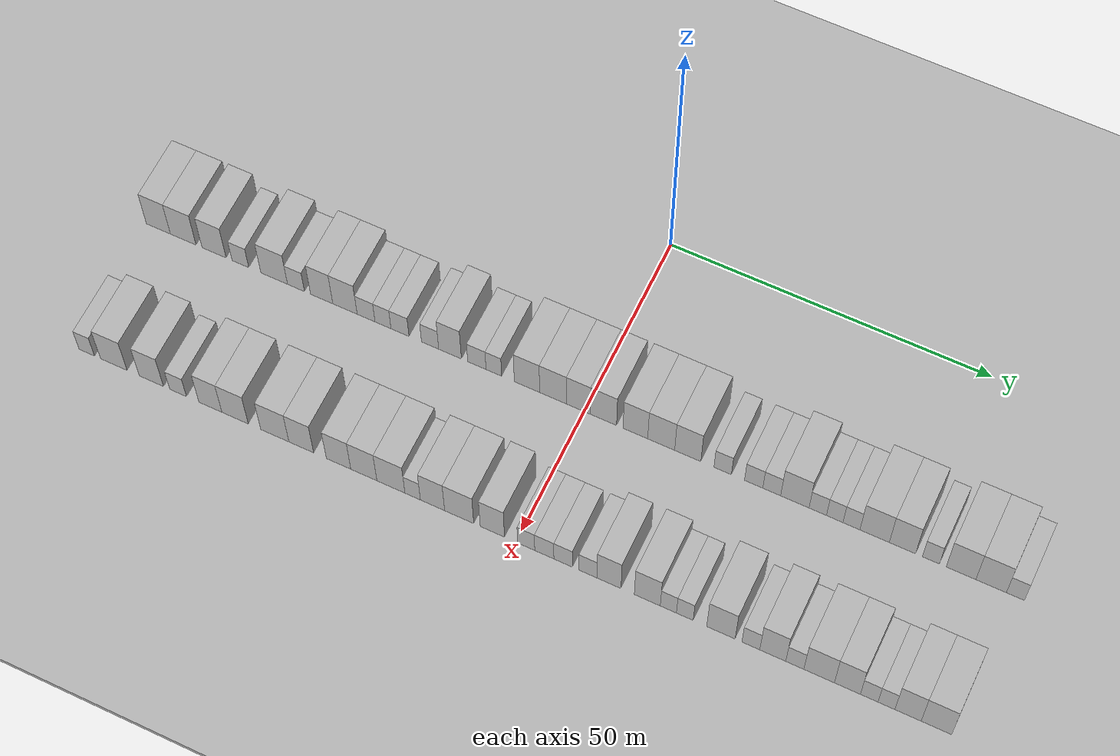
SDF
<sdf version="1.6">
 <world name="default">
  <include><name>ground_plane_1</name><uri>model://HANNAS_ground_plane</uri></include>
  <include>
   <name>ground_plane_2</name>
   <uri>model://HANNAS_ground_plane</uri>
   <pose>100 0 0  0 0 0</pose>
  </include>
  <model name="building_33">
   <static>1</static>
   <pose>25.0000 -68.5717 0 0.000000 0.000000 0.000000</pose>
   <link name="link">
    <pose>0 0 4.50 0 0 0</pose>
    <collision name="collision"><geometry><box><size>10.0000 4.0033 9.0000</size></box></geometry></collision>
    <visual name="visual">
     <cast_shadows>0</cast_shadows>
     <geometry><box><size>10.0000 4.0033 9.0000</size></box></geometry>
     <material>
      <script>
       <uri>model://HANNAS_wall/materials/scripts</uri>
       <uri>model://HANNAS_wall/materials/textures</uri>
       <name>vrc/HANNAS_wall</name>
      </script>
     </material>
    </visual>
   </link>
  </model>
  <model name="building_34">
   <static>1</static>
   <pose>25.0000 -64.4402 0 0.000000 0.000000 0.000000</pose>
   <link name="link">
    <pose>0 0 4.50 0 0 0</pose>
    <collision name="collision"><geometry><box><size>10.0000 4.2598 9.0000</size></box></geometry></collision>
    <visual name="visual">
     <cast_shadows>0</cast_shadows>
     <geometry><box><size>10.0000 4.2598 9.0000</size></box></geometry>
     <material>
      <script>
       <uri>model://HANNAS_wall/materials/scripts</uri>
       <uri>model://HANNAS_wall/materials/textures</uri>
       <name>vrc/HANNAS_wall</name>
      </script>
     </material>
    </visual>
   </link>
  </model>
  <model name="building_35">
   <static>1</static>
   <pose>25.0000 -59.3258 0 0.000000 0.000000 0.000000</pose>
   <link name="link">
    <pose>0 0 4.50 0 0 0</pose>
    <collision name="collision"><geometry><box><size>10.0000 3.9689 9.0000</size></box></geometry></collision>
    <visual name="visual">
     <cast_shadows>0</cast_shadows>
     <geometry><box><size>10.0000 3.9689 9.0000</size></box></geometry>
     <material>
      <script>
       <uri>model://HANNAS_wall/materials/scripts</uri>
       <uri>model://HANNAS_wall/materials/textures</uri>
       <name>vrc/HANNAS_wall</name>
      </script>
     </material>
    </visual>
   </link>
  </model>
  <model name="building_36">
   <static>1</static>
   <pose>25.0000 -54.9732 0 0.000000 0.000000 0.000000</pose>
   <link name="link">
    <pose>0 0 3.00 0 0 0</pose>
    <collision name="collision"><geometry><box><size>10.0000 2.7362 6.0000</size></box></geometry></collision>
    <visual name="visual">
     <cast_shadows>0</cast_shadows>
     <geometry><box><size>10.0000 2.7362 6.0000</size></box></geometry>
     <material>
      <script>
       <uri>model://HANNAS_wall/materials/scripts</uri>
       <uri>model://HANNAS_wall/materials/textures</uri>
       <name>vrc/HANNAS_wall</name>
      </script>
     </material>
    </visual>
   </link>
  </model>
  <model name="building_37">
   <static>1</static>
   <pose>25.0000 -49.4260 0 0.000000 0.000000 0.000000</pose>
   <link name="link">
    <pose>0 0 4.50 0 0 0</pose>
    <collision name="collision"><geometry><box><size>10.0000 4.3583 9.0000</size></box></geometry></collision>
    <visual name="visual">
     <cast_shadows>0</cast_shadows>
     <geometry><box><size>10.0000 4.3583 9.0000</size></box></geometry>
     <material>
      <script>
       <uri>model://HANNAS_wall/materials/scripts</uri>
       <uri>model://HANNAS_wall/materials/textures</uri>
       <name>vrc/HANNAS_wall</name>
      </script>
     </material>
    </visual>
   </link>
  </model>
  <model name="building_38">
   <static>1</static>
   <pose>25.0000 -45.8665 0 0.000000 0.000000 0.000000</pose>
   <link name="link">
    <pose>0 0 3.00 0 0 0</pose>
    <collision name="collision"><geometry><box><size>10.0000 2.7607 6.0000</size></box></geometry></collision>
    <visual name="visual">
     <cast_shadows>0</cast_shadows>
     <geometry><box><size>10.0000 2.7607 6.0000</size></box></geometry>
     <material>
      <script>
       <uri>model://HANNAS_wall/materials/scripts</uri>
       <uri>model://HANNAS_wall/materials/textures</uri>
       <name>vrc/HANNAS_wall</name>
      </script>
     </material>
    </visual>
   </link>
  </model>
  <model name="building_39">
   <static>1</static>
   <pose>25.0000 -41.6844 0 0.000000 0.000000 0.000000</pose>
   <link name="link">
    <pose>0 0 4.50 0 0 0</pose>
    <collision name="collision"><geometry><box><size>10.0000 3.6036 9.0000</size></box></geometry></collision>
    <visual name="visual">
     <cast_shadows>0</cast_shadows>
     <geometry><box><size>10.0000 3.6036 9.0000</size></box></geometry>
     <material>
      <script>
       <uri>model://HANNAS_wall/materials/scripts</uri>
       <uri>model://HANNAS_wall/materials/textures</uri>
       <name>vrc/HANNAS_wall</name>
      </script>
     </material>
    </visual>
   </link>
  </model>
  <model name="building_40">
   <static>1</static>
   <pose>25.0000 -37.9024 0 0.000000 0.000000 0.000000</pose>
   <link name="link">
    <pose>0 0 4.50 0 0 0</pose>
    <collision name="collision"><geometry><box><size>10.0000 3.9604 9.0000</size></box></geometry></collision>
    <visual name="visual">
     <cast_shadows>0</cast_shadows>
     <geometry><box><size>10.0000 3.9604 9.0000</size></box></geometry>
     <material>
      <script>
       <uri>model://HANNAS_wall/materials/scripts</uri>
       <uri>model://HANNAS_wall/materials/textures</uri>
       <name>vrc/HANNAS_wall</name>
      </script>
     </material>
    </visual>
   </link>
  </model>
  <model name="building_41">
   <static>1</static>
   <pose>25.0000 -34.4834 0 0.000000 0.000000 0.000000</pose>
   <link name="link">
    <pose>0 0 3.00 0 0 0</pose>
    <collision name="collision"><geometry><box><size>10.0000 2.8776 6.0000</size></box></geometry></collision>
    <visual name="visual">
     <cast_shadows>0</cast_shadows>
     <geometry><box><size>10.0000 2.8776 6.0000</size></box></geometry>
     <material>
      <script>
       <uri>model://HANNAS_wall/materials/scripts</uri>
       <uri>model://HANNAS_wall/materials/textures</uri>
       <name>vrc/HANNAS_wall</name>
      </script>
     </material>
    </visual>
   </link>
  </model>
  <model name="building_42">
   <static>1</static>
   <pose>25.0000 -31.7618 0 0.000000 0.000000 0.000000</pose>
   <link name="link">
    <pose>0 0 3.00 0 0 0</pose>
    <collision name="collision"><geometry><box><size>10.0000 2.5654 6.0000</size></box></geometry></collision>
    <visual name="visual">
     <cast_shadows>0</cast_shadows>
     <geometry><box><size>10.0000 2.5654 6.0000</size></box></geometry>
     <material>
      <script>
       <uri>model://HANNAS_wall/materials/scripts</uri>
       <uri>model://HANNAS_wall/materials/textures</uri>
       <name>vrc/HANNAS_wall</name>
      </script>
     </material>
    </visual>
   </link>
  </model>
  <model name="building_43">
   <static>1</static>
   <pose>25.0000 -29.0326 0 0.000000 0.000000 0.000000</pose>
   <link name="link">
    <pose>0 0 3.00 0 0 0</pose>
    <collision name="collision"><geometry><box><size>10.0000 2.8930 6.0000</size></box></geometry></collision>
    <visual name="visual">
     <cast_shadows>0</cast_shadows>
     <geometry><box><size>10.0000 2.8930 6.0000</size></box></geometry>
     <material>
      <script>
       <uri>model://HANNAS_wall/materials/scripts</uri>
       <uri>model://HANNAS_wall/materials/textures</uri>
       <name>vrc/HANNAS_wall</name>
      </script>
     </material>
    </visual>
   </link>
  </model>
  <model name="building_44">
   <static>1</static>
   <pose>25.0000 -24.2162 0 0.000000 0.000000 0.000000</pose>
   <link name="link">
    <pose>0 0 3.00 0 0 0</pose>
    <collision name="collision"><geometry><box><size>10.0000 2.7399 6.0000</size></box></geometry></collision>
    <visual name="visual">
     <cast_shadows>0</cast_shadows>
     <geometry><box><size>10.0000 2.7399 6.0000</size></box></geometry>
     <material>
      <script>
       <uri>model://HANNAS_wall/materials/scripts</uri>
       <uri>model://HANNAS_wall/materials/textures</uri>
       <name>vrc/HANNAS_wall</name>
      </script>
     </material>
    </visual>
   </link>
  </model>
  <model name="building_45">
   <static>1</static>
   <pose>25.0000 -21.0369 0 0.000000 0.000000 0.000000</pose>
   <link name="link">
    <pose>0 0 4.50 0 0 0</pose>
    <collision name="collision"><geometry><box><size>10.0000 3.6186 9.0000</size></box></geometry></collision>
    <visual name="visual">
     <cast_shadows>0</cast_shadows>
     <geometry><box><size>10.0000 3.6186 9.0000</size></box></geometry>
     <material>
      <script>
       <uri>model://HANNAS_wall/materials/scripts</uri>
       <uri>model://HANNAS_wall/materials/textures</uri>
       <name>vrc/HANNAS_wall</name>
      </script>
     </material>
    </visual>
   </link>
  </model>
  <model name="building_46">
   <static>1</static>
   <pose>25.0000 -16.7770 0 0.000000 0.000000 0.000000</pose>
   <link name="link">
    <pose>0 0 3.00 0 0 0</pose>
    <collision name="collision"><geometry><box><size>10.0000 2.9012 6.0000</size></box></geometry></collision>
    <visual name="visual">
     <cast_shadows>0</cast_shadows>
     <geometry><box><size>10.0000 2.9012 6.0000</size></box></geometry>
     <material>
      <script>
       <uri>model://HANNAS_wall/materials/scripts</uri>
       <uri>model://HANNAS_wall/materials/textures</uri>
       <name>vrc/HANNAS_wall</name>
      </script>
     </material>
    </visual>
   </link>
  </model>
  <model name="building_47">
   <static>1</static>
   <pose>25.0000 -14.0936 0 0.000000 0.000000 0.000000</pose>
   <link name="link">
    <pose>0 0 3.00 0 0 0</pose>
    <collision name="collision"><geometry><box><size>10.0000 2.4657 6.0000</size></box></geometry></collision>
    <visual name="visual">
     <cast_shadows>0</cast_shadows>
     <geometry><box><size>10.0000 2.4657 6.0000</size></box></geometry>
     <material>
      <script>
       <uri>model://HANNAS_wall/materials/scripts</uri>
       <uri>model://HANNAS_wall/materials/textures</uri>
       <name>vrc/HANNAS_wall</name>
      </script>
     </material>
    </visual>
   </link>
  </model>
  <model name="building_48">
   <static>1</static>
   <pose>25.0000 -8.8720 0 0.000000 0.000000 0.000000</pose>
   <link name="link">
    <pose>0 0 4.50 0 0 0</pose>
    <collision name="collision"><geometry><box><size>10.0000 3.9774 9.0000</size></box></geometry></collision>
    <visual name="visual">
     <cast_shadows>0</cast_shadows>
     <geometry><box><size>10.0000 3.9774 9.0000</size></box></geometry>
     <material>
      <script>
       <uri>model://HANNAS_wall/materials/scripts</uri>
       <uri>model://HANNAS_wall/materials/textures</uri>
       <name>vrc/HANNAS_wall</name>
      </script>
     </material>
    </visual>
   </link>
  </model>
  <model name="building_49">
   <static>1</static>
   <pose>25.0000 -4.7981 0 0.000000 0.000000 0.000000</pose>
   <link name="link">
    <pose>0 0 4.50 0 0 0</pose>
    <collision name="collision"><geometry><box><size>10.0000 4.1706 9.0000</size></box></geometry></collision>
    <visual name="visual">
     <cast_shadows>0</cast_shadows>
     <geometry><box><size>10.0000 4.1706 9.0000</size></box></geometry>
     <material>
      <script>
       <uri>model://HANNAS_wall/materials/scripts</uri>
       <uri>model://HANNAS_wall/materials/textures</uri>
       <name>vrc/HANNAS_wall</name>
      </script>
     </material>
    </visual>
   </link>
  </model>
  <model name="building_50">
   <static>1</static>
   <pose>25.0000 -0.8397 0 0.000000 0.000000 0.000000</pose>
   <link name="link">
    <pose>0 0 4.50 0 0 0</pose>
    <collision name="collision"><geometry><box><size>10.0000 3.7461 9.0000</size></box></geometry></collision>
    <visual name="visual">
     <cast_shadows>0</cast_shadows>
     <geometry><box><size>10.0000 3.7461 9.0000</size></box></geometry>
     <material>
      <script>
       <uri>model://HANNAS_wall/materials/scripts</uri>
       <uri>model://HANNAS_wall/materials/textures</uri>
       <name>vrc/HANNAS_wall</name>
      </script>
     </material>
    </visual>
   </link>
  </model>
  <model name="building_51">
   <static>1</static>
   <pose>25.0000 3.0756 0 0.000000 0.000000 0.000000</pose>
   <link name="link">
    <pose>0 0 4.50 0 0 0</pose>
    <collision name="collision"><geometry><box><size>10.0000 4.0845 9.0000</size></box></geometry></collision>
    <visual name="visual">
     <cast_shadows>0</cast_shadows>
     <geometry><box><size>10.0000 4.0845 9.0000</size></box></geometry>
     <material>
      <script>
       <uri>model://HANNAS_wall/materials/scripts</uri>
       <uri>model://HANNAS_wall/materials/textures</uri>
       <name>vrc/HANNAS_wall</name>
      </script>
     </material>
    </visual>
   </link>
  </model>
  <model name="building_52">
   <static>1</static>
   <pose>25.0000 8.0231 0 0.000000 0.000000 0.000000</pose>
   <link name="link">
    <pose>0 0 4.50 0 0 0</pose>
    <collision name="collision"><geometry><box><size>10.0000 3.8103 9.0000</size></box></geometry></collision>
    <visual name="visual">
     <cast_shadows>0</cast_shadows>
     <geometry><box><size>10.0000 3.8103 9.0000</size></box></geometry>
     <material>
      <script>
       <uri>model://HANNAS_wall/materials/scripts</uri>
       <uri>model://HANNAS_wall/materials/textures</uri>
       <name>vrc/HANNAS_wall</name>
      </script>
     </material>
    </visual>
   </link>
  </model>
  <model name="building_53">
   <static>1</static>
   <pose>25.0000 12.0070 0 0.000000 0.000000 0.000000</pose>
   <link name="link">
    <pose>0 0 4.50 0 0 0</pose>
    <collision name="collision"><geometry><box><size>10.0000 4.1575 9.0000</size></box></geometry></collision>
    <visual name="visual">
     <cast_shadows>0</cast_shadows>
     <geometry><box><size>10.0000 4.1575 9.0000</size></box></geometry>
     <material>
      <script>
       <uri>model://HANNAS_wall/materials/scripts</uri>
       <uri>model://HANNAS_wall/materials/textures</uri>
       <name>vrc/HANNAS_wall</name>
      </script>
     </material>
    </visual>
   </link>
  </model>
  <model name="building_54">
   <static>1</static>
   <pose>25.0000 16.0909 0 0.000000 0.000000 0.000000</pose>
   <link name="link">
    <pose>0 0 4.50 0 0 0</pose>
    <collision name="collision"><geometry><box><size>10.0000 4.0104 9.0000</size></box></geometry></collision>
    <visual name="visual">
     <cast_shadows>0</cast_shadows>
     <geometry><box><size>10.0000 4.0104 9.0000</size></box></geometry>
     <material>
      <script>
       <uri>model://HANNAS_wall/materials/scripts</uri>
       <uri>model://HANNAS_wall/materials/textures</uri>
       <name>vrc/HANNAS_wall</name>
      </script>
     </material>
    </visual>
   </link>
  </model>
  <model name="building_55">
   <static>1</static>
   <pose>25.0000 21.4236 0 0.000000 0.000000 0.000000</pose>
   <link name="link">
    <pose>0 0 3.00 0 0 0</pose>
    <collision name="collision"><geometry><box><size>10.0000 2.6548 6.0000</size></box></geometry></collision>
    <visual name="visual">
     <cast_shadows>0</cast_shadows>
     <geometry><box><size>10.0000 2.6548 6.0000</size></box></geometry>
     <material>
      <script>
       <uri>model://HANNAS_wall/materials/scripts</uri>
       <uri>model://HANNAS_wall/materials/textures</uri>
       <name>vrc/HANNAS_wall</name>
      </script>
     </material>
    </visual>
   </link>
  </model>
  <model name="building_56">
   <static>1</static>
   <pose>25.0000 26.1383 0 0.000000 0.000000 0.000000</pose>
   <link name="link">
    <pose>0 0 3.00 0 0 0</pose>
    <collision name="collision"><geometry><box><size>10.0000 2.7746 6.0000</size></box></geometry></collision>
    <visual name="visual">
     <cast_shadows>0</cast_shadows>
     <geometry><box><size>10.0000 2.7746 6.0000</size></box></geometry>
     <material>
      <script>
       <uri>model://HANNAS_wall/materials/scripts</uri>
       <uri>model://HANNAS_wall/materials/textures</uri>
       <name>vrc/HANNAS_wall</name>
      </script>
     </material>
    </visual>
   </link>
  </model>
  <model name="building_57">
   <static>1</static>
   <pose>25.0000 28.8759 0 0.000000 0.000000 0.000000</pose>
   <link name="link">
    <pose>0 0 3.00 0 0 0</pose>
    <collision name="collision"><geometry><box><size>10.0000 2.7008 6.0000</size></box></geometry></collision>
    <visual name="visual">
     <cast_shadows>0</cast_shadows>
     <geometry><box><size>10.0000 2.7008 6.0000</size></box></geometry>
     <material>
      <script>
       <uri>model://HANNAS_wall/materials/scripts</uri>
       <uri>model://HANNAS_wall/materials/textures</uri>
       <name>vrc/HANNAS_wall</name>
      </script>
     </material>
    </visual>
   </link>
  </model>
  <model name="building_58">
   <static>1</static>
   <pose>25.0000 32.3667 0 0.000000 0.000000 0.000000</pose>
   <link name="link">
    <pose>0 0 4.50 0 0 0</pose>
    <collision name="collision"><geometry><box><size>10.0000 4.2808 9.0000</size></box></geometry></collision>
    <visual name="visual">
     <cast_shadows>0</cast_shadows>
     <geometry><box><size>10.0000 4.2808 9.0000</size></box></geometry>
     <material>
      <script>
       <uri>model://HANNAS_wall/materials/scripts</uri>
       <uri>model://HANNAS_wall/materials/textures</uri>
       <name>vrc/HANNAS_wall</name>
      </script>
     </material>
    </visual>
   </link>
  </model>
  <model name="building_59">
   <static>1</static>
   <pose>25.0000 35.8172 0 0.000000 0.000000 0.000000</pose>
   <link name="link">
    <pose>0 0 3.00 0 0 0</pose>
    <collision name="collision"><geometry><box><size>10.0000 2.6202 6.0000</size></box></geometry></collision>
    <visual name="visual">
     <cast_shadows>0</cast_shadows>
     <geometry><box><size>10.0000 2.6202 6.0000</size></box></geometry>
     <material>
      <script>
       <uri>model://HANNAS_wall/materials/scripts</uri>
       <uri>model://HANNAS_wall/materials/textures</uri>
       <name>vrc/HANNAS_wall</name>
      </script>
     </material>
    </visual>
   </link>
  </model>
  <model name="building_60">
   <static>1</static>
   <pose>25.0000 38.3645 0 0.000000 0.000000 0.000000</pose>
   <link name="link">
    <pose>0 0 3.00 0 0 0</pose>
    <collision name="collision"><geometry><box><size>10.0000 2.4744 6.0000</size></box></geometry></collision>
    <visual name="visual">
     <cast_shadows>0</cast_shadows>
     <geometry><box><size>10.0000 2.4744 6.0000</size></box></geometry>
     <material>
      <script>
       <uri>model://HANNAS_wall/materials/scripts</uri>
       <uri>model://HANNAS_wall/materials/textures</uri>
       <name>vrc/HANNAS_wall</name>
      </script>
     </material>
    </visual>
   </link>
  </model>
  <model name="building_61">
   <static>1</static>
   <pose>25.0000 40.8677 0 0.000000 0.000000 0.000000</pose>
   <link name="link">
    <pose>0 0 3.00 0 0 0</pose>
    <collision name="collision"><geometry><box><size>10.0000 2.5318 6.0000</size></box></geometry></collision>
    <visual name="visual">
     <cast_shadows>0</cast_shadows>
     <geometry><box><size>10.0000 2.5318 6.0000</size></box></geometry>
     <material>
      <script>
       <uri>model://HANNAS_wall/materials/scripts</uri>
       <uri>model://HANNAS_wall/materials/textures</uri>
       <name>vrc/HANNAS_wall</name>
      </script>
     </material>
    </visual>
   </link>
  </model>
  <model name="building_62">
   <static>1</static>
   <pose>25.0000 44.3219 0 0.000000 0.000000 0.000000</pose>
   <link name="link">
    <pose>0 0 4.50 0 0 0</pose>
    <collision name="collision"><geometry><box><size>10.0000 4.3766 9.0000</size></box></geometry></collision>
    <visual name="visual">
     <cast_shadows>0</cast_shadows>
     <geometry><box><size>10.0000 4.3766 9.0000</size></box></geometry>
     <material>
      <script>
       <uri>model://HANNAS_wall/materials/scripts</uri>
       <uri>model://HANNAS_wall/materials/textures</uri>
       <name>vrc/HANNAS_wall</name>
      </script>
     </material>
    </visual>
   </link>
  </model>
  <model name="building_63">
   <static>1</static>
   <pose>25.0000 48.4581 0 0.000000 0.000000 0.000000</pose>
   <link name="link">
    <pose>0 0 4.50 0 0 0</pose>
    <collision name="collision"><geometry><box><size>10.0000 3.8957 9.0000</size></box></geometry></collision>
    <visual name="visual">
     <cast_shadows>0</cast_shadows>
     <geometry><box><size>10.0000 3.8957 9.0000</size></box></geometry>
     <material>
      <script>
       <uri>model://HANNAS_wall/materials/scripts</uri>
       <uri>model://HANNAS_wall/materials/textures</uri>
       <name>vrc/HANNAS_wall</name>
      </script>
     </material>
    </visual>
   </link>
  </model>
  <model name="building_64">
   <static>1</static>
   <pose>25.0000 52.6645 0 0.000000 0.000000 0.000000</pose>
   <link name="link">
    <pose>0 0 3.00 0 0 0</pose>
    <collision name="collision"><geometry><box><size>10.0000 2.5172 6.0000</size></box></geometry></collision>
    <visual name="visual">
     <cast_shadows>0</cast_shadows>
     <geometry><box><size>10.0000 2.5172 6.0000</size></box></geometry>
     <material>
      <script>
       <uri>model://HANNAS_wall/materials/scripts</uri>
       <uri>model://HANNAS_wall/materials/textures</uri>
       <name>vrc/HANNAS_wall</name>
      </script>
     </material>
    </visual>
   </link>
  </model>
  <model name="building_65">
   <static>1</static>
   <pose>25.0000 57.1027 0 0.000000 0.000000 0.000000</pose>
   <link name="link">
    <pose>0 0 4.50 0 0 0</pose>
    <collision name="collision"><geometry><box><size>10.0000 4.3592 9.0000</size></box></geometry></collision>
    <visual name="visual">
     <cast_shadows>0</cast_shadows>
     <geometry><box><size>10.0000 4.3592 9.0000</size></box></geometry>
     <material>
      <script>
       <uri>model://HANNAS_wall/materials/scripts</uri>
       <uri>model://HANNAS_wall/materials/textures</uri>
       <name>vrc/HANNAS_wall</name>
      </script>
     </material>
    </visual>
   </link>
  </model>
  <model name="building_66">
   <static>1</static>
   <pose>25.0000 61.5125 0 0.000000 0.000000 0.000000</pose>
   <link name="link">
    <pose>0 0 4.50 0 0 0</pose>
    <collision name="collision"><geometry><box><size>10.0000 4.4603 9.0000</size></box></geometry></collision>
    <visual name="visual">
     <cast_shadows>0</cast_shadows>
     <geometry><box><size>10.0000 4.4603 9.0000</size></box></geometry>
     <material>
      <script>
       <uri>model://HANNAS_wall/materials/scripts</uri>
       <uri>model://HANNAS_wall/materials/textures</uri>
       <name>vrc/HANNAS_wall</name>
      </script>
     </material>
    </visual>
   </link>
  </model>
  <model name="building_67">
   <static>1</static>
   <pose>25.0000 65.0585 0 0.000000 0.000000 0.000000</pose>
   <link name="link">
    <pose>0 0 3.00 0 0 0</pose>
    <collision name="collision"><geometry><box><size>10.0000 2.6317 6.0000</size></box></geometry></collision>
    <visual name="visual">
     <cast_shadows>0</cast_shadows>
     <geometry><box><size>10.0000 2.6317 6.0000</size></box></geometry>
     <material>
      <script>
       <uri>model://HANNAS_wall/materials/scripts</uri>
       <uri>model://HANNAS_wall/materials/textures</uri>
       <name>vrc/HANNAS_wall</name>
      </script>
     </material>
    </visual>
   </link>
  </model>
  <model name="building_142">
   <static>1</static>
   <pose>47.0000 -67.8842 0 0.000000 0.000000 0.000000</pose>
   <link name="link">
    <pose>0 0 3.00 0 0 0</pose>
    <collision name="collision"><geometry><box><size>10.0000 2.5177 6.0000</size></box></geometry></collision>
    <visual name="visual">
     <cast_shadows>0</cast_shadows>
     <geometry><box><size>10.0000 2.5177 6.0000</size></box></geometry>
     <material>
      <script>
       <uri>model://HANNAS_wall/materials/scripts</uri>
       <uri>model://HANNAS_wall/materials/textures</uri>
       <name>vrc/HANNAS_wall</name>
      </script>
     </material>
    </visual>
   </link>
  </model>
  <model name="building_143">
   <static>1</static>
   <pose>47.0000 -63.4637 0 0.000000 0.000000 0.000000</pose>
   <link name="link">
    <pose>0 0 4.50 0 0 0</pose>
    <collision name="collision"><geometry><box><size>10.0000 4.3233 9.0000</size></box></geometry></collision>
    <visual name="visual">
     <cast_shadows>0</cast_shadows>
     <geometry><box><size>10.0000 4.3233 9.0000</size></box></geometry>
     <material>
      <script>
       <uri>model://HANNAS_wall/materials/scripts</uri>
       <uri>model://HANNAS_wall/materials/textures</uri>
       <name>vrc/HANNAS_wall</name>
      </script>
     </material>
    </visual>
   </link>
  </model>
  <model name="building_144">
   <static>1</static>
   <pose>47.0000 -57.3422 0 0.000000 0.000000 0.000000</pose>
   <link name="link">
    <pose>0 0 4.50 0 0 0</pose>
    <collision name="collision"><geometry><box><size>10.0000 3.9196 9.0000</size></box></geometry></collision>
    <visual name="visual">
     <cast_shadows>0</cast_shadows>
     <geometry><box><size>10.0000 3.9196 9.0000</size></box></geometry>
     <material>
      <script>
       <uri>model://HANNAS_wall/materials/scripts</uri>
       <uri>model://HANNAS_wall/materials/textures</uri>
       <name>vrc/HANNAS_wall</name>
      </script>
     </material>
    </visual>
   </link>
  </model>
  <model name="building_145">
   <static>1</static>
   <pose>47.0000 -53.0267 0 0.000000 0.000000 0.000000</pose>
   <link name="link">
    <pose>0 0 3.00 0 0 0</pose>
    <collision name="collision"><geometry><box><size>10.0000 2.7114 6.0000</size></box></geometry></collision>
    <visual name="visual">
     <cast_shadows>0</cast_shadows>
     <geometry><box><size>10.0000 2.7114 6.0000</size></box></geometry>
     <material>
      <script>
       <uri>model://HANNAS_wall/materials/scripts</uri>
       <uri>model://HANNAS_wall/materials/textures</uri>
       <name>vrc/HANNAS_wall</name>
      </script>
     </material>
    </visual>
   </link>
  </model>
  <model name="building_146">
   <static>1</static>
   <pose>47.0000 -47.8244 0 0.000000 0.000000 0.000000</pose>
   <link name="link">
    <pose>0 0 4.50 0 0 0</pose>
    <collision name="collision"><geometry><box><size>10.0000 3.6933 9.0000</size></box></geometry></collision>
    <visual name="visual">
     <cast_shadows>0</cast_shadows>
     <geometry><box><size>10.0000 3.6933 9.0000</size></box></geometry>
     <material>
      <script>
       <uri>model://HANNAS_wall/materials/scripts</uri>
       <uri>model://HANNAS_wall/materials/textures</uri>
       <name>vrc/HANNAS_wall</name>
      </script>
     </material>
    </visual>
   </link>
  </model>
  <model name="building_147">
   <static>1</static>
   <pose>47.0000 -43.8699 0 0.000000 0.000000 0.000000</pose>
   <link name="link">
    <pose>0 0 4.50 0 0 0</pose>
    <collision name="collision"><geometry><box><size>10.0000 4.2156 9.0000</size></box></geometry></collision>
    <visual name="visual">
     <cast_shadows>0</cast_shadows>
     <geometry><box><size>10.0000 4.2156 9.0000</size></box></geometry>
     <material>
      <script>
       <uri>model://HANNAS_wall/materials/scripts</uri>
       <uri>model://HANNAS_wall/materials/textures</uri>
       <name>vrc/HANNAS_wall</name>
      </script>
     </material>
    </visual>
   </link>
  </model>
  <model name="building_148">
   <static>1</static>
   <pose>47.0000 -37.5255 0 0.000000 0.000000 0.000000</pose>
   <link name="link">
    <pose>0 0 4.50 0 0 0</pose>
    <collision name="collision"><geometry><box><size>10.0000 4.4732 9.0000</size></box></geometry></collision>
    <visual name="visual">
     <cast_shadows>0</cast_shadows>
     <geometry><box><size>10.0000 4.4732 9.0000</size></box></geometry>
     <material>
      <script>
       <uri>model://HANNAS_wall/materials/scripts</uri>
       <uri>model://HANNAS_wall/materials/textures</uri>
       <name>vrc/HANNAS_wall</name>
      </script>
     </material>
    </visual>
   </link>
  </model>
  <model name="building_149">
   <static>1</static>
   <pose>47.0000 -33.3310 0 0.000000 0.000000 0.000000</pose>
   <link name="link">
    <pose>0 0 4.50 0 0 0</pose>
    <collision name="collision"><geometry><box><size>10.0000 3.9159 9.0000</size></box></geometry></collision>
    <visual name="visual">
     <cast_shadows>0</cast_shadows>
     <geometry><box><size>10.0000 3.9159 9.0000</size></box></geometry>
     <material>
      <script>
       <uri>model://HANNAS_wall/materials/scripts</uri>
       <uri>model://HANNAS_wall/materials/textures</uri>
       <name>vrc/HANNAS_wall</name>
      </script>
     </material>
    </visual>
   </link>
  </model>
  <model name="building_150">
   <static>1</static>
   <pose>47.0000 -27.4478 0 0.000000 0.000000 0.000000</pose>
   <link name="link">
    <pose>0 0 4.50 0 0 0</pose>
    <collision name="collision"><geometry><box><size>10.0000 3.8503 9.0000</size></box></geometry></collision>
    <visual name="visual">
     <cast_shadows>0</cast_shadows>
     <geometry><box><size>10.0000 3.8503 9.0000</size></box></geometry>
     <material>
      <script>
       <uri>model://HANNAS_wall/materials/scripts</uri>
       <uri>model://HANNAS_wall/materials/textures</uri>
       <name>vrc/HANNAS_wall</name>
      </script>
     </material>
    </visual>
   </link>
  </model>
  <model name="building_151">
   <static>1</static>
   <pose>47.0000 -23.4774 0 0.000000 0.000000 0.000000</pose>
   <link name="link">
    <pose>0 0 4.50 0 0 0</pose>
    <collision name="collision"><geometry><box><size>10.0000 4.0907 9.0000</size></box></geometry></collision>
    <visual name="visual">
     <cast_shadows>0</cast_shadows>
     <geometry><box><size>10.0000 4.0907 9.0000</size></box></geometry>
     <material>
      <script>
       <uri>model://HANNAS_wall/materials/scripts</uri>
       <uri>model://HANNAS_wall/materials/textures</uri>
       <name>vrc/HANNAS_wall</name>
      </script>
     </material>
    </visual>
   </link>
  </model>
  <model name="building_152">
   <static>1</static>
   <pose>47.0000 -19.2384 0 0.000000 0.000000 0.000000</pose>
   <link name="link">
    <pose>0 0 4.50 0 0 0</pose>
    <collision name="collision"><geometry><box><size>10.0000 4.3873 9.0000</size></box></geometry></collision>
    <visual name="visual">
     <cast_shadows>0</cast_shadows>
     <geometry><box><size>10.0000 4.3873 9.0000</size></box></geometry>
     <material>
      <script>
       <uri>model://HANNAS_wall/materials/scripts</uri>
       <uri>model://HANNAS_wall/materials/textures</uri>
       <name>vrc/HANNAS_wall</name>
      </script>
     </material>
    </visual>
   </link>
  </model>
  <model name="building_153">
   <static>1</static>
   <pose>47.0000 -15.8443 0 0.000000 0.000000 0.000000</pose>
   <link name="link">
    <pose>0 0 3.00 0 0 0</pose>
    <collision name="collision"><geometry><box><size>10.0000 2.4008 6.0000</size></box></geometry></collision>
    <visual name="visual">
     <cast_shadows>0</cast_shadows>
     <geometry><box><size>10.0000 2.4008 6.0000</size></box></geometry>
     <material>
      <script>
       <uri>model://HANNAS_wall/materials/scripts</uri>
       <uri>model://HANNAS_wall/materials/textures</uri>
       <name>vrc/HANNAS_wall</name>
      </script>
     </material>
    </visual>
   </link>
  </model>
  <model name="building_154">
   <static>1</static>
   <pose>47.0000 -12.7701 0 0.000000 0.000000 0.000000</pose>
   <link name="link">
    <pose>0 0 4.50 0 0 0</pose>
    <collision name="collision"><geometry><box><size>10.0000 3.7477 9.0000</size></box></geometry></collision>
    <visual name="visual">
     <cast_shadows>0</cast_shadows>
     <geometry><box><size>10.0000 3.7477 9.0000</size></box></geometry>
     <material>
      <script>
       <uri>model://HANNAS_wall/materials/scripts</uri>
       <uri>model://HANNAS_wall/materials/textures</uri>
       <name>vrc/HANNAS_wall</name>
      </script>
     </material>
    </visual>
   </link>
  </model>
  <model name="building_155">
   <static>1</static>
   <pose>47.0000 -8.6504 0 0.000000 0.000000 0.000000</pose>
   <link name="link">
    <pose>0 0 4.50 0 0 0</pose>
    <collision name="collision"><geometry><box><size>10.0000 4.4918 9.0000</size></box></geometry></collision>
    <visual name="visual">
     <cast_shadows>0</cast_shadows>
     <geometry><box><size>10.0000 4.4918 9.0000</size></box></geometry>
     <material>
      <script>
       <uri>model://HANNAS_wall/materials/scripts</uri>
       <uri>model://HANNAS_wall/materials/textures</uri>
       <name>vrc/HANNAS_wall</name>
      </script>
     </material>
    </visual>
   </link>
  </model>
  <model name="building_156">
   <static>1</static>
   <pose>47.0000 -3.5394 0 0.000000 0.000000 0.000000</pose>
   <link name="link">
    <pose>0 0 4.50 0 0 0</pose>
    <collision name="collision"><geometry><box><size>10.0000 3.7301 9.0000</size></box></geometry></collision>
    <visual name="visual">
     <cast_shadows>0</cast_shadows>
     <geometry><box><size>10.0000 3.7301 9.0000</size></box></geometry>
     <material>
      <script>
       <uri>model://HANNAS_wall/materials/scripts</uri>
       <uri>model://HANNAS_wall/materials/textures</uri>
       <name>vrc/HANNAS_wall</name>
      </script>
     </material>
    </visual>
   </link>
  </model>
  <model name="building_157">
   <static>1</static>
   <pose>47.0000 1.6336 0 0.000000 0.000000 0.000000</pose>
   <link name="link">
    <pose>0 0 3.00 0 0 0</pose>
    <collision name="collision"><geometry><box><size>10.0000 2.6161 6.0000</size></box></geometry></collision>
    <visual name="visual">
     <cast_shadows>0</cast_shadows>
     <geometry><box><size>10.0000 2.6161 6.0000</size></box></geometry>
     <material>
      <script>
       <uri>model://HANNAS_wall/materials/scripts</uri>
       <uri>model://HANNAS_wall/materials/textures</uri>
       <name>vrc/HANNAS_wall</name>
      </script>
     </material>
    </visual>
   </link>
  </model>
  <model name="building_158">
   <static>1</static>
   <pose>47.0000 4.3973 0 0.000000 0.000000 0.000000</pose>
   <link name="link">
    <pose>0 0 3.00 0 0 0</pose>
    <collision name="collision"><geometry><box><size>10.0000 2.9112 6.0000</size></box></geometry></collision>
    <visual name="visual">
     <cast_shadows>0</cast_shadows>
     <geometry><box><size>10.0000 2.9112 6.0000</size></box></geometry>
     <material>
      <script>
       <uri>model://HANNAS_wall/materials/scripts</uri>
       <uri>model://HANNAS_wall/materials/textures</uri>
       <name>vrc/HANNAS_wall</name>
      </script>
     </material>
    </visual>
   </link>
  </model>
  <model name="building_159">
   <static>1</static>
   <pose>47.0000 7.2506 0 0.000000 0.000000 0.000000</pose>
   <link name="link">
    <pose>0 0 3.00 0 0 0</pose>
    <collision name="collision"><geometry><box><size>10.0000 2.7954 6.0000</size></box></geometry></collision>
    <visual name="visual">
     <cast_shadows>0</cast_shadows>
     <geometry><box><size>10.0000 2.7954 6.0000</size></box></geometry>
     <material>
      <script>
       <uri>model://HANNAS_wall/materials/scripts</uri>
       <uri>model://HANNAS_wall/materials/textures</uri>
       <name>vrc/HANNAS_wall</name>
      </script>
     </material>
    </visual>
   </link>
  </model>
  <model name="building_160">
   <static>1</static>
   <pose>47.0000 11.0102 0 0.000000 0.000000 0.000000</pose>
   <link name="link">
    <pose>0 0 3.00 0 0 0</pose>
    <collision name="collision"><geometry><box><size>10.0000 2.7239 6.0000</size></box></geometry></collision>
    <visual name="visual">
     <cast_shadows>0</cast_shadows>
     <geometry><box><size>10.0000 2.7239 6.0000</size></box></geometry>
     <material>
      <script>
       <uri>model://HANNAS_wall/materials/scripts</uri>
       <uri>model://HANNAS_wall/materials/textures</uri>
       <name>vrc/HANNAS_wall</name>
      </script>
     </material>
    </visual>
   </link>
  </model>
  <model name="building_161">
   <static>1</static>
   <pose>47.0000 14.1853 0 0.000000 0.000000 0.000000</pose>
   <link name="link">
    <pose>0 0 4.50 0 0 0</pose>
    <collision name="collision"><geometry><box><size>10.0000 3.6263 9.0000</size></box></geometry></collision>
    <visual name="visual">
     <cast_shadows>0</cast_shadows>
     <geometry><box><size>10.0000 3.6263 9.0000</size></box></geometry>
     <material>
      <script>
       <uri>model://HANNAS_wall/materials/scripts</uri>
       <uri>model://HANNAS_wall/materials/textures</uri>
       <name>vrc/HANNAS_wall</name>
      </script>
     </material>
    </visual>
   </link>
  </model>
  <model name="building_162">
   <static>1</static>
   <pose>47.0000 19.9480 0 0.000000 0.000000 0.000000</pose>
   <link name="link">
    <pose>0 0 4.50 0 0 0</pose>
    <collision name="collision"><geometry><box><size>10.0000 3.8989 9.0000</size></box></geometry></collision>
    <visual name="visual">
     <cast_shadows>0</cast_shadows>
     <geometry><box><size>10.0000 3.8989 9.0000</size></box></geometry>
     <material>
      <script>
       <uri>model://HANNAS_wall/materials/scripts</uri>
       <uri>model://HANNAS_wall/materials/textures</uri>
       <name>vrc/HANNAS_wall</name>
      </script>
     </material>
    </visual>
   </link>
  </model>
  <model name="building_163">
   <static>1</static>
   <pose>47.0000 23.1011 0 0.000000 0.000000 0.000000</pose>
   <link name="link">
    <pose>0 0 3.00 0 0 0</pose>
    <collision name="collision"><geometry><box><size>10.0000 2.4075 6.0000</size></box></geometry></collision>
    <visual name="visual">
     <cast_shadows>0</cast_shadows>
     <geometry><box><size>10.0000 2.4075 6.0000</size></box></geometry>
     <material>
      <script>
       <uri>model://HANNAS_wall/materials/scripts</uri>
       <uri>model://HANNAS_wall/materials/textures</uri>
       <name>vrc/HANNAS_wall</name>
      </script>
     </material>
    </visual>
   </link>
  </model>
  <model name="building_164">
   <static>1</static>
   <pose>47.0000 25.5552 0 0.000000 0.000000 0.000000</pose>
   <link name="link">
    <pose>0 0 3.00 0 0 0</pose>
    <collision name="collision"><geometry><box><size>10.0000 2.5005 6.0000</size></box></geometry></collision>
    <visual name="visual">
     <cast_shadows>0</cast_shadows>
     <geometry><box><size>10.0000 2.5005 6.0000</size></box></geometry>
     <material>
      <script>
       <uri>model://HANNAS_wall/materials/scripts</uri>
       <uri>model://HANNAS_wall/materials/textures</uri>
       <name>vrc/HANNAS_wall</name>
      </script>
     </material>
    </visual>
   </link>
  </model>
  <model name="building_165">
   <static>1</static>
   <pose>47.0000 30.9101 0 0.000000 0.000000 0.000000</pose>
   <link name="link">
    <pose>0 0 4.50 0 0 0</pose>
    <collision name="collision"><geometry><box><size>10.0000 4.2093 9.0000</size></box></geometry></collision>
    <visual name="visual">
     <cast_shadows>0</cast_shadows>
     <geometry><box><size>10.0000 4.2093 9.0000</size></box></geometry>
     <material>
      <script>
       <uri>model://HANNAS_wall/materials/scripts</uri>
       <uri>model://HANNAS_wall/materials/textures</uri>
       <name>vrc/HANNAS_wall</name>
      </script>
     </material>
    </visual>
   </link>
  </model>
  <model name="building_166">
   <static>1</static>
   <pose>47.0000 35.3304 0 0.000000 0.000000 0.000000</pose>
   <link name="link">
    <pose>0 0 3.00 0 0 0</pose>
    <collision name="collision"><geometry><box><size>10.0000 2.6312 6.0000</size></box></geometry></collision>
    <visual name="visual">
     <cast_shadows>0</cast_shadows>
     <geometry><box><size>10.0000 2.6312 6.0000</size></box></geometry>
     <material>
      <script>
       <uri>model://HANNAS_wall/materials/scripts</uri>
       <uri>model://HANNAS_wall/materials/textures</uri>
       <name>vrc/HANNAS_wall</name>
      </script>
     </material>
    </visual>
   </link>
  </model>
  <model name="building_167">
   <static>1</static>
   <pose>47.0000 38.5597 0 0.000000 0.000000 0.000000</pose>
   <link name="link">
    <pose>0 0 4.50 0 0 0</pose>
    <collision name="collision"><geometry><box><size>10.0000 3.8274 9.0000</size></box></geometry></collision>
    <visual name="visual">
     <cast_shadows>0</cast_shadows>
     <geometry><box><size>10.0000 3.8274 9.0000</size></box></geometry>
     <material>
      <script>
       <uri>model://HANNAS_wall/materials/scripts</uri>
       <uri>model://HANNAS_wall/materials/textures</uri>
       <name>vrc/HANNAS_wall</name>
      </script>
     </material>
    </visual>
   </link>
  </model>
  <model name="building_168">
   <static>1</static>
   <pose>47.0000 41.7967 0 0.000000 0.000000 0.000000</pose>
   <link name="link">
    <pose>0 0 3.00 0 0 0</pose>
    <collision name="collision"><geometry><box><size>10.0000 2.6467 6.0000</size></box></geometry></collision>
    <visual name="visual">
     <cast_shadows>0</cast_shadows>
     <geometry><box><size>10.0000 2.6467 6.0000</size></box></geometry>
     <material>
      <script>
       <uri>model://HANNAS_wall/materials/scripts</uri>
       <uri>model://HANNAS_wall/materials/textures</uri>
       <name>vrc/HANNAS_wall</name>
      </script>
     </material>
    </visual>
   </link>
  </model>
  <model name="building_169">
   <static>1</static>
   <pose>47.0000 45.3477 0 0.000000 0.000000 0.000000</pose>
   <link name="link">
    <pose>0 0 4.50 0 0 0</pose>
    <collision name="collision"><geometry><box><size>10.0000 4.4552 9.0000</size></box></geometry></collision>
    <visual name="visual">
     <cast_shadows>0</cast_shadows>
     <geometry><box><size>10.0000 4.4552 9.0000</size></box></geometry>
     <material>
      <script>
       <uri>model://HANNAS_wall/materials/scripts</uri>
       <uri>model://HANNAS_wall/materials/textures</uri>
       <name>vrc/HANNAS_wall</name>
      </script>
     </material>
    </visual>
   </link>
  </model>
  <model name="building_170">
   <static>1</static>
   <pose>47.0000 49.4642 0 0.000000 0.000000 0.000000</pose>
   <link name="link">
    <pose>0 0 4.50 0 0 0</pose>
    <collision name="collision"><geometry><box><size>10.0000 3.7777 9.0000</size></box></geometry></collision>
    <visual name="visual">
     <cast_shadows>0</cast_shadows>
     <geometry><box><size>10.0000 3.7777 9.0000</size></box></geometry>
     <material>
      <script>
       <uri>model://HANNAS_wall/materials/scripts</uri>
       <uri>model://HANNAS_wall/materials/textures</uri>
       <name>vrc/HANNAS_wall</name>
      </script>
     </material>
    </visual>
   </link>
  </model>
  <model name="building_171">
   <static>1</static>
   <pose>47.0000 52.6206 0 0.000000 0.000000 0.000000</pose>
   <link name="link">
    <pose>0 0 3.00 0 0 0</pose>
    <collision name="collision"><geometry><box><size>10.0000 2.5350 6.0000</size></box></geometry></collision>
    <visual name="visual">
     <cast_shadows>0</cast_shadows>
     <geometry><box><size>10.0000 2.5350 6.0000</size></box></geometry>
     <material>
      <script>
       <uri>model://HANNAS_wall/materials/scripts</uri>
       <uri>model://HANNAS_wall/materials/textures</uri>
       <name>vrc/HANNAS_wall</name>
      </script>
     </material>
    </visual>
   </link>
  </model>
  <model name="building_172">
   <static>1</static>
   <pose>47.0000 55.1110 0 0.000000 0.000000 0.000000</pose>
   <link name="link">
    <pose>0 0 3.00 0 0 0</pose>
    <collision name="collision"><geometry><box><size>10.0000 2.4459 6.0000</size></box></geometry></collision>
    <visual name="visual">
     <cast_shadows>0</cast_shadows>
     <geometry><box><size>10.0000 2.4459 6.0000</size></box></geometry>
     <material>
      <script>
       <uri>model://HANNAS_wall/materials/scripts</uri>
       <uri>model://HANNAS_wall/materials/textures</uri>
       <name>vrc/HANNAS_wall</name>
      </script>
     </material>
    </visual>
   </link>
  </model>
  <model name="building_173">
   <static>1</static>
   <pose>47.0000 58.2236 0 0.000000 0.000000 0.000000</pose>
   <link name="link">
    <pose>0 0 4.50 0 0 0</pose>
    <collision name="collision"><geometry><box><size>10.0000 3.7794 9.0000</size></box></geometry></collision>
    <visual name="visual">
     <cast_shadows>0</cast_shadows>
     <geometry><box><size>10.0000 3.7794 9.0000</size></box></geometry>
     <material>
      <script>
       <uri>model://HANNAS_wall/materials/scripts</uri>
       <uri>model://HANNAS_wall/materials/textures</uri>
       <name>vrc/HANNAS_wall</name>
      </script>
     </material>
    </visual>
   </link>
  </model>
  <model name="building_174">
   <static>1</static>
   <pose>47.0000 62.3018 0 0.000000 0.000000 0.000000</pose>
   <link name="link">
    <pose>0 0 4.50 0 0 0</pose>
    <collision name="collision"><geometry><box><size>10.0000 4.3769 9.0000</size></box></geometry></collision>
    <visual name="visual">
     <cast_shadows>0</cast_shadows>
     <geometry><box><size>10.0000 4.3769 9.0000</size></box></geometry>
     <material>
      <script>
       <uri>model://HANNAS_wall/materials/scripts</uri>
       <uri>model://HANNAS_wall/materials/textures</uri>
       <name>vrc/HANNAS_wall</name>
      </script>
     </material>
    </visual>
   </link>
  </model>
 </world>
</sdf>
